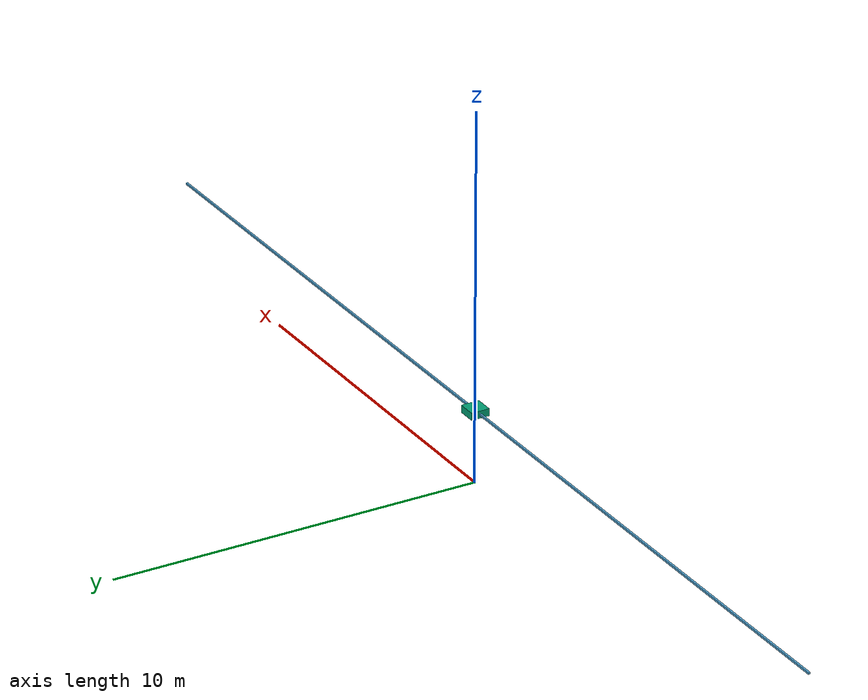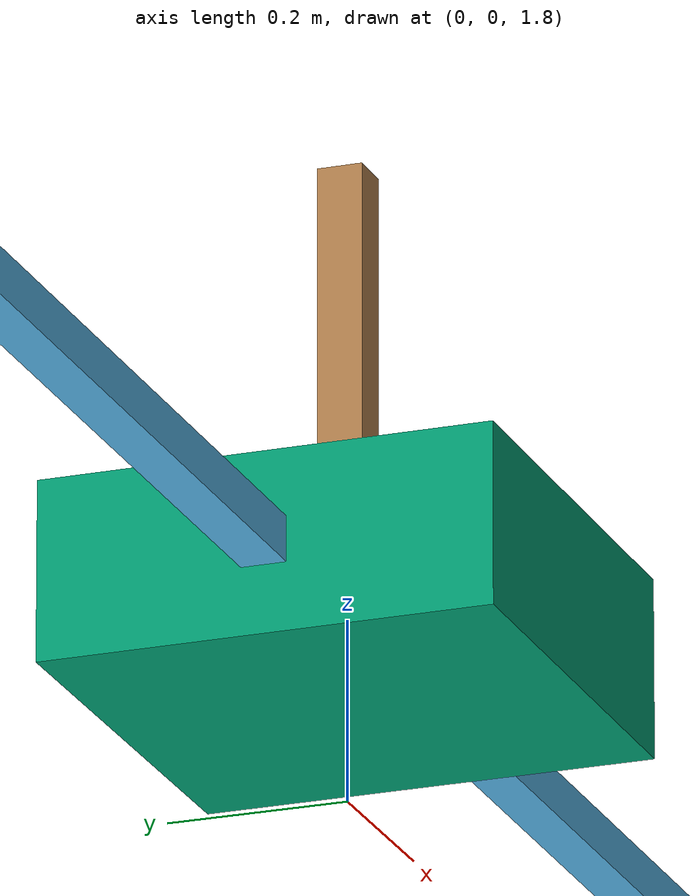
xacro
<?xml version="1.0"?>
<robot xmlns:xacro="http://www.ros.org/wili/xacro" name="pendulum">

    <xacro:include filename="$(find pendulum)/urdf/cartpole_body.urdf.xacro" />
    <xacro:body />

    <xacro:include filename="$(find pendulum)/urdf/pendulum.ros2_control.xacro" />
    <xacro:pendulum_ros2_control />

</robot>

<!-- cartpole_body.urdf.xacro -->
<robot xmlns:xacro="http://www.ros.org/wili/xacro" name="pendulum">

    <xacro:macro name="body">
        <link name="world">
        </link>

        <link name="slideBar">
            <visual>
                <geometry>
                    <box size="30 0.05 0.05" />
                </geometry>
                <origin xyz="0 0 0" />
            </visual>
            <inertial>
                <mass value="0.1" />
                <inertia ixx="1.0" ixy="0.0" ixz="0.0" iyy="1.0" iyz="0.0" izz="1.0" />
            </inertial>
        </link>
        <gazebo reference="slideBar">
            <material>Gazebo/Tertiary</material>
        </gazebo>

        <joint name="world_to_slideBar" type="fixed">
            <parent link="world" />
            <child link="slideBar" />
            <origin xyz="0.0 0.0 2.0" />
        </joint>

        <link name="cart">
            <visual>
                <geometry>
                    <box size="0.5 0.5 0.2" />
                </geometry>
                <origin xyz="0 0 0" />
            </visual>
            <inertial>
                <mass value="2.0" />
                <inertia ixx="1.0" ixy="0.0" ixz="0.0" iyy="1.0" iyz="0.0" izz="1.0" />
            </inertial>
        </link>
        <gazebo reference="cart">
            <material>Gazebo/CoM</material>
        </gazebo>
        <joint name="base_to_plat" type="prismatic">
            <axis xyz="1 0 0" />
            <origin xyz="0.0 0.0 0.0" />
            <parent link="slideBar" />
            <child link="cart" />
            <limit effort="100000.0" lower="-15" upper="15" velocity="100" />
            <dynamics damping="0.0" friction="0.0" />
        </joint>
        <transmission name="tran2">
            <type>transmission_interface/SimpleTransmission</type>
            <joint name="base_to_plat">
                <hardwareInterface>hardware_interface/EffortJointInterface</hardwareInterface>
            </joint>
            <actuator name="planar_motor_2">
                <hardwareInterface>hardware_interface/EffortJointInterface</hardwareInterface>
                <mechanicalReduction>1</mechanicalReduction>
            </actuator>
        </transmission>

        <link name="pole1">
            <visual>
                <geometry>
                    <box size="0.05 0.05 0.5" />
                </geometry>
                <origin rpy="0 0 0" xyz="0 0 0.25" />
            </visual>
            <inertial>
                <origin rpy="0 0 0" xyz="0 0 0.25" />
                <mass value="0.1" />
                <inertia ixx="0.0000001" ixy="0.0" ixz="0.0" iyy="0.00208" iyz="0.0" izz="0.0000001" />
            </inertial>
        </link>
        <gazebo reference="pole1">
            <material>Gazebo/Wood</material>
        </gazebo>

        <joint name="cart_to_pole1" type="revolute">
            <axis xyz="0 1 0" />
            <origin xyz="0.0 0.0 0" rpy="0.0 0.0 0.0" />
            <parent link="cart" />
            <child link="pole1" />
            <dynamics damping="0.0" friction="0.0" />
            <limit effort="100000.0" lower="-3.14" upper="3.14" velocity="50" />
        </joint>
        <transmission name="tran3">
            <type>transmission_interface/SimpleTransmission</type>
            <joint name="cart_to_pole1">
                <hardwareInterface>hardware_interface/EffortJointInterface</hardwareInterface>
            </joint>
            <actuator name="rev_motor">
                <hardwareInterface>hardware_interface/EffortJointInterface</hardwareInterface>
                <mechanicalReduction>1</mechanicalReduction>
            </actuator>
        </transmission>
    </xacro:macro>

</robot>
